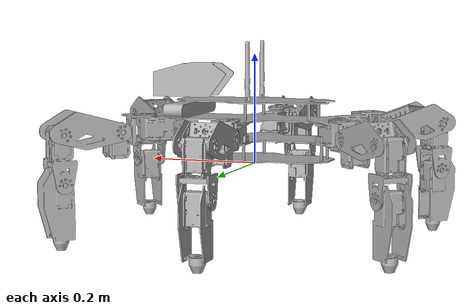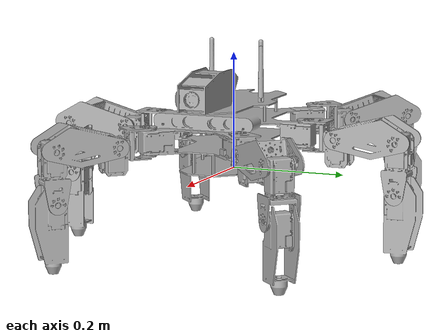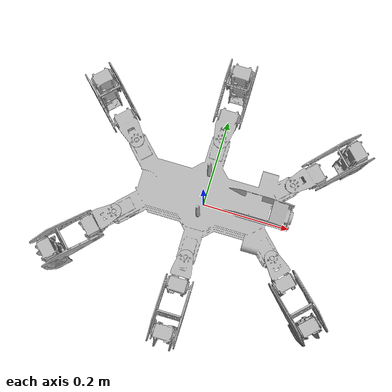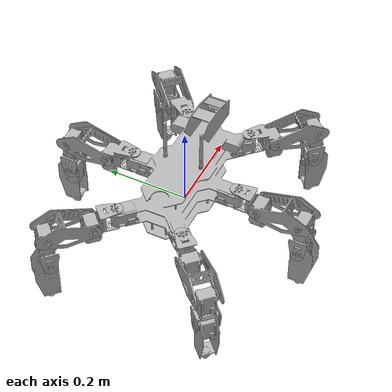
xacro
<?xml version="1.0" encoding="UTF-8" ?>

<robot xmlns:xacro="http://ros.org/wiki/xacro" name="Golem">

    <!-- parameters -->
    <xacro:property name="pi" value="3.1415926535897931"/>
    <xacro:property name="body_length_x" value="0.3556"/>
    <xacro:property name="body_length_y" value="0.165"/>
    <xacro:property name="coxa_length" value="0.05893"/>
    <xacro:property name="femur_length" value="0.10798"/>
    <xacro:property name="tibia_length" value="0.08774"/>
    <xacro:property name="tarsus_length" value="0.12065"/>

    <gazebo>
        <plugin name="gazebo_ros_control" filename="libgazebo_ros_control.so">
            <robotNamespace>/Golem</robotNamespace>
        </plugin>
    </gazebo>

    <link name="base_link"/>

    <joint name="base_joint" type="fixed">
        <parent link="base_link"/>
        <child link="body_link"/>
        <origin xyz="0.0 0.0 0.064" rpy="0.0 0.0 0.0"/>
    </joint>

    <link name="body_link">
        <visual>
            <origin xyz="0.0 0.0 0.0" rpy="0.0 0.0 0.0"/>
            <geometry>
                <mesh filename="package://hexapod_description/meshes/body.stl" scale="0.001 0.001 0.001"/>
            </geometry>
            <material name="">
                <color rgba="0.7 0.7 0.7 1"/>
            </material>
        </visual>
        <collision>
            <origin xyz="0.0 0.0 0.0" rpy="0.0 0.0 0.0"/>
            <geometry>
                <mesh filename="package://hexapod_description/meshes/body.stl" scale="0.001 0.001 0.001"/>
            </geometry>
            <material name="">
                <color rgba="0.7 0.7 0.7 1"/>
            </material>
        </collision>
        <inertial>
            <origin xyz="0.0 0.0 0.0" rpy="0.0 0.0 0.0" />
            <mass value="0.00001"/>
            <inertia
                ixx="1.0" ixy="0.0"  ixz="0.0"
                iyy="1.0" iyz="0.0"
                izz="1.0" />
        </inertial>
    </link>
    <gazebo reference="body_link">
        <material>Gazebo/DarkGrey</material>
    </gazebo>

    <!-- Camera properties -->
    <joint name="camera_rgb_joint" type="fixed">
        <parent link="body_link"/>
        <child link="camera_rgb_optical_frame"/>
        <origin xyz="0.150 0.0255 0.034" rpy="${pi/2} ${pi} ${pi/2}"/>
    </joint>
    <link name="camera_rgb_optical_frame">
        <inertial>
            <origin xyz="0.0 0.0 0.0" rpy="0.0 0.0 0.0" />
            <mass value="0.00001"/>
            <inertia
                ixx="1.0" ixy="0.0"  ixz="0.0"
                iyy="1.0" iyz="0.0"
                izz="1.0" />
        </inertial>
    </link>

    <joint name="camera_depth_joint" type="fixed">
        <parent link="body_link"/>
        <child link="camera_depth_optical_frame"/>
        <origin xyz="0.150 -0.0225 0.034" rpy="${pi/2} ${pi} ${pi/2}"/>
    </joint>
    <link name="camera_depth_optical_frame">
        <inertial>
            <origin xyz="0.0 0.0 0.0" rpy="0.0 0.0 0.0" />
            <mass value="0.00001"/>
            <inertia
                ixx="1.0" ixy="0.0"  ixz="0.0"
                iyy="1.0" iyz="0.0"
                izz="1.0" />
        </inertial>
    </link>
    <!-- IMU properties -->
    <joint name="imu_joint" type="fixed">
        <parent link="body_link"/>
        <child link="imu_link"/>
        <origin xyz="0.0 0.0 0.034" rpy="0.0 0.0 0.0"/>
    </joint>
    <link name="imu_link">
        <inertial>
            <origin xyz="0.0 0.0 0.0" rpy="0.0 0.0 0.0" />
            <mass value="0.00001"/>
            <inertia
                ixx="1.0" ixy="0.0"  ixz="0.0"
                iyy="1.0" iyz="0.0"
                izz="1.0" />
        </inertial>
    </link>

    <!-- Joint properties -->
    <xacro:property name="joint_lower_limit" value="-${3.14}"/>
    <xacro:property name="joint_upper_limit" value="${3.14}"/>
    <xacro:property name="joint_effort" value="6.0"/>
    <xacro:property name="joint_velocity" value="0.524"/>

    <!-- Head properties -->
    <joint name="pan_joint" type="revolute">
        <parent link="body_link"/>
        <child link="pan_link"/>
        <origin xyz="0.1 0.0 0.034" rpy="0.0 0.0 0.0"/>
        <axis xyz="0.0 0.0 1.0"/>
        <limit lower="${joint_lower_limit}" upper="${joint_upper_limit}" effort="${joint_effort}" velocity="${joint_velocity}"/>
    </joint>
    <link name="pan_link">
        <inertial>
            <origin xyz="0.0 0.0 0.0" rpy="0.0 0.0 0.0" />
            <mass value="0.00001"/>
            <inertia
                ixx="1.0" ixy="0.0"  ixz="0.0"
                iyy="1.0" iyz="0.0"
                izz="1.0" />
        </inertial>
    </link>

    <!-- Leg macro -->
    <xacro:macro name="leg" params="side position x y angle axis">

        <!-- leg position -->
        <joint name="leg_center_joint_${side}${position}" type="fixed">
            <origin xyz="${x} ${y} 0.0" rpy="0.0 0.0 0.0"/>
            <parent link="body_link"/>
            <child link="leg_center_${side}${position}"/>
        </joint>
        <link name="leg_center_${side}${position}">
            <inertial>
                <origin xyz="0.0 0.0 0.0" rpy="0.0 0.0 0.0" />
                <mass value="0.00001"/>
                <inertia
                    ixx="1.0" ixy="0.0"  ixz="0.0"
                    iyy="1.0" iyz="0.0"
                    izz="1.0" />
            </inertial>
        </link>
        <!-- coxa -->
        <joint name="coxa_joint_${side}${position}" type="revolute">
            <origin xyz="0.0 0.0 0.0" rpy="0.0 0.0 ${angle}"/>
            <parent link="leg_center_${side}${position}"/>
            <child link="coxa_${side}${position}"/>
            <axis xyz="0.0 0.0 1.0"/>
            <limit lower="${joint_lower_limit}" upper="${joint_upper_limit}" effort="${joint_effort}" velocity="${joint_velocity}"/>
        </joint>
        <transmission name="coxa_transmission_${side}${position}">
            <type>transmission_interface/SimpleTransmission</type>
            <joint name="coxa_joint_${side}${position}">
                <hardwareInterface>EffortJointInterface</hardwareInterface>
            </joint>
            <actuator name="coxa_motor_${side}${position}">
                <hardwareInterface>EffortJointInterface</hardwareInterface>
                <mechanicalReduction>1</mechanicalReduction>
            </actuator>
        </transmission>
        <link name="coxa_${side}${position}">
            <visual>
                <origin xyz="0.0 0.0 0.0" rpy="0.0 0.0 0.0"/>
                <geometry>
                    <mesh filename="package://hexapod_description/meshes/coxa.stl" scale="0.001 0.001 0.001"/>
                </geometry>
                <material name="">
                    <color rgba="0.7 0.7 0.7 1"/>
                </material>
            </visual>
            <collision>
                <origin xyz="0.0 0.0 0.0" rpy="0.0 0.0 0.0" />
                <geometry>
                    <mesh filename="package://hexapod_description/meshes/coxa.stl" scale="0.001 0.001 0.001"/>
                </geometry>
                <material name="">
                    <color rgba="0.7 0.7 0.7 1" />
                </material>
            </collision>
            <inertial>
                <origin xyz="0.0 0.0 0.0" rpy="0.0 0.0 0.0" />
                <mass value="0.00001"/>
                <inertia
                    ixx="1.0" ixy="0.0"  ixz="0.0"
                    iyy="1.0" iyz="0.0"
                    izz="1.0" />
            </inertial>
        </link>
        <gazebo reference="coxa_${side}${position}">
            <material>Gazebo/DarkGrey</material>
        </gazebo>

        <!-- femur -->
        <joint name="femur_joint_${side}${position}" type="revolute">
            <origin xyz="${coxa_length} 0.0 0.0" rpy="-${pi/2} ${pi/2} 0.0"/>
            <parent link="coxa_${side}${position}"/>
            <child link="femur_${side}${position}"/>
            <axis xyz="0.0 0.0 ${axis}"/>
            <limit lower="${joint_lower_limit}" upper="${joint_upper_limit}" effort="${joint_effort}" velocity="${joint_velocity}"/>
        </joint>
        <transmission name="femur_transmission_${side}${position}">
            <type>transmission_interface/SimpleTransmission</type>
            <joint name="femur_joint_${side}${position}">
                <hardwareInterface>EffortJointInterface</hardwareInterface>
            </joint>
            <actuator name="femur_motor_${side}${position}">
                <hardwareInterface>EffortJointInterface</hardwareInterface>
                <mechanicalReduction>1</mechanicalReduction>
            </actuator>
        </transmission>
        <link name="femur_${side}${position}">
            <visual>
                <origin xyz="0.0 0.0 0.0" rpy="0.0 0.0 0.0"/>
                <geometry>
                    <mesh filename="package://hexapod_description/meshes/femur.stl" scale="0.001 0.001 0.001"/>
                </geometry>
                <material name="">
                    <color rgba="0.7 0.7 0.7 1"/>
                </material>
            </visual>
            <collision>
                <origin xyz="0.0 0.0 0.0" rpy="0.0 0.0 0.0" />
                <geometry>
                    <mesh filename="package://hexapod_description/meshes/femur.stl" scale="0.001 0.001 0.001"/>
                </geometry>
                <material name="">
                    <color rgba="0.7 0.7 0.7 1" />
                </material>
            </collision>
            <inertial>
                <origin xyz="0.0 0.0 0.0" rpy="0.0 0.0 0.0" />
                <mass value="0.00001"/>
                <inertia
                    ixx="1.0" ixy="0.0"  ixz="0.0"
                    iyy="1.0" iyz="0.0"
                    izz="1.0" />
            </inertial>
        </link>

        <!-- tibia -->
        <joint name="tibia_joint_${side}${position}" type="revolute">
            <origin xyz="0.0 -${femur_length} 0.0" rpy="${pi} 0.0 0.0"/>
            <parent link="femur_${side}${position}"/>
            <child link="tibia_${side}${position}"/>
            <axis xyz="0.0 0.0 ${axis}"/>
            <limit lower="${joint_lower_limit}" upper="${joint_upper_limit}" effort="${joint_effort}" velocity="${joint_velocity}"/>
        </joint>
        <transmission name="tibia_transmission_${side}${position}">
            <type>transmission_interface/SimpleTransmission</type>
            <joint name="tibia_joint_${side}${position}">
                <hardwareInterface>EffortJointInterface</hardwareInterface>
            </joint>
            <actuator name="tibia_motor_${side}${position}">
                <hardwareInterface>EffortJointInterface</hardwareInterface>
                <mechanicalReduction>1</mechanicalReduction>
            </actuator>
        </transmission>
        <link name="tibia_${side}${position}">
            <visual>
                <origin xyz="0.0 0.0 0.0" rpy="0.0 0.0 0.0"/>
                <geometry>
                    <mesh filename="package://hexapod_description/meshes/tibia.stl" scale="0.001 0.001 0.001"/>
                </geometry>
                <material name="">
                    <color rgba="0.7 0.7 0.7 1"/>
                </material>
            </visual>
            <collision>
                <origin xyz="0.0 0.0 0.0" rpy="0.0 0.0 0.0" />
                <geometry>
                    <mesh filename="package://hexapod_description/meshes/tibia.stl" scale="0.001 0.001 0.001"/>
                </geometry>
                <material name="">
                    <color rgba="0.7 0.7 0.7 1" />
                </material>
            </collision>
            <inertial>
                <origin xyz="0.0 0.0 0.0" rpy="0.0 0.0 0.0" />
                <mass value="0.00001"/>
                <inertia
                    ixx="1.0" ixy="0.0"  ixz="0.0"
                    iyy="1.0" iyz="0.0"
                    izz="1.0" />
            </inertial>
        </link>
        <gazebo reference="tibia_${side}${position}">
            <material>Gazebo/DarkGrey</material>
        </gazebo>

        <!-- tarsus -->
        <joint name="tarsus_joint_${side}${position}" type="revolute">
            <origin xyz="${tibia_length} 0.0 0.0" rpy="0.0 0.0 0.0"/>
            <parent link="tibia_${side}${position}"/>
            <child link="tarsus_${side}${position}"/>
            <axis xyz="0.0 0.0 ${axis}"/>
            <limit lower="${joint_lower_limit}" upper="${joint_upper_limit}" effort="${joint_effort}" velocity="${joint_velocity}"/>
        </joint>
        <transmission name="tarsus_transmission_${side}${position}">
            <type>transmission_interface/SimpleTransmission</type>
            <joint name="tarsus_joint_${side}${position}">
                <hardwareInterface>EffortJointInterface</hardwareInterface>
            </joint>
            <actuator name="tarsus_motor_${side}${position}">
                <hardwareInterface>EffortJointInterface</hardwareInterface>
                <mechanicalReduction>1</mechanicalReduction>
            </actuator>
        </transmission>
        <link name="tarsus_${side}${position}">
            <visual>
                <origin xyz="0.0 0.0 0.0" rpy="0.0 0.0 0.0"/>
                <geometry>
                    <mesh filename="package://hexapod_description/meshes/tarsus.stl" scale="0.001 0.001 0.001"/>
                </geometry>
                <material name="">
                    <color rgba="0.7 0.7 0.7 1"/>
                </material>
            </visual>
            <collision>
                <origin xyz="0.0 0.0 0.0" rpy="0.0 0.0 0.0" />
                <geometry>
                    <mesh filename="package://hexapod_description/meshes/tarsus.stl" scale="0.001 0.001 0.001"/>
                </geometry>
                <material name="">
                    <color rgba="0.7 0.7 0.7 1" />
                </material>
            </collision>
            <inertial>
                <origin xyz="0.0 0.0 0.0" rpy="0.0 0.0 0.0" />
                <mass value="0.00001"/>
                <inertia
                    ixx="1.0" ixy="0.0"  ixz="0.0"
                    iyy="1.0" iyz="0.0"
                    izz="1.0" />
            </inertial>
        </link>
        <gazebo reference="tarsus_${side}${position}">
            <material>Gazebo/DarkGrey</material>
        </gazebo>

        <!-- foot -->
        <joint name="foot_joint_${side}${position}" type="fixed">
            <origin xyz="${tarsus_length} 0.0 0.0" rpy="0.0 0.0 0.0" />
            <parent link="tarsus_${side}${position}" />
            <child link="foot_${side}${position}" />
        </joint>
        <link name="foot_${side}${position}">
            <inertial>
                <origin xyz="0.0 0.0 0.0" rpy="0.0 0.0 0.0" />
                <mass value="0.00001"/>
                <inertia
                    ixx="1.0" ixy="0.0"  ixz="0.0"
                    iyy="1.0" iyz="0.0"
                    izz="1.0" />
            </inertial>
        </link>
        <gazebo>
            <plugin name="f3d_controller" filename="libgazebo_ros_f3d.so">
                <alwaysOn>true</alwaysOn>
                <updateRate>50</updateRate>
                <bodyName>foot_${side}${position}</bodyName>
                <topicName>${side}${position}_ground_feedback</topicName>
                <frameName>foot_${side}${position}</frameName>
            </plugin>
        </gazebo>
    </xacro:macro>

    <!-- Build robot model -->
    <xacro:leg side="R" position="R" x="-0.1778" y="-0.0825" angle="-${pi*3/4}" axis="1"/>
    <xacro:leg side="R" position="M" x="0.0" y="-0.13335" angle="-${pi/2}" axis="1"/>
    <xacro:leg side="R" position="F" x="0.1778" y="-0.0825" angle="-${pi/4}" axis="1"/>

    <xacro:leg side="L" position="R" x="-0.1778" y="0.0825" angle="${pi*3/4}" axis="-1"/>
    <xacro:leg side="L" position="M" x="0.0" y="0.13335" angle="${pi/2}" axis="-1"/>
    <xacro:leg side="L" position="F" x="0.1778" y="0.0825" angle="${pi/4}" axis="-1"/>
</robot>
